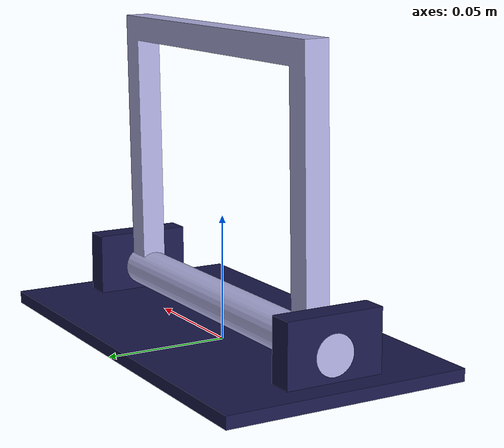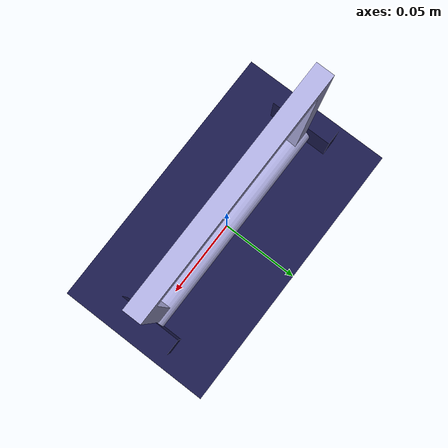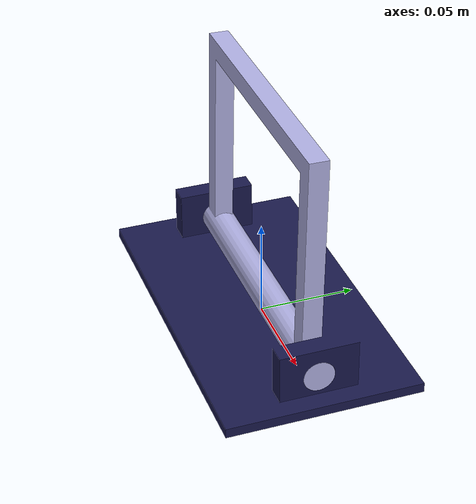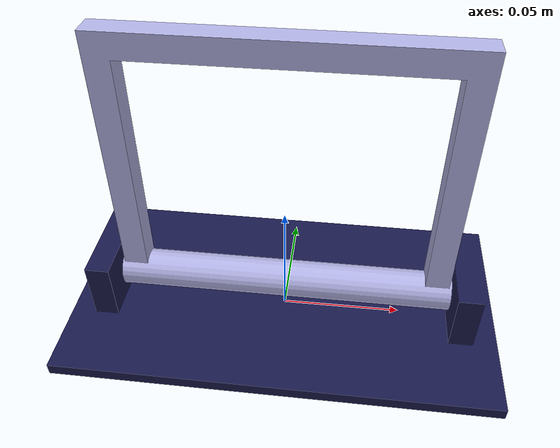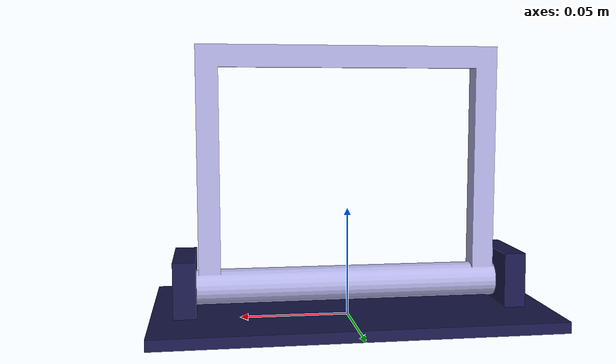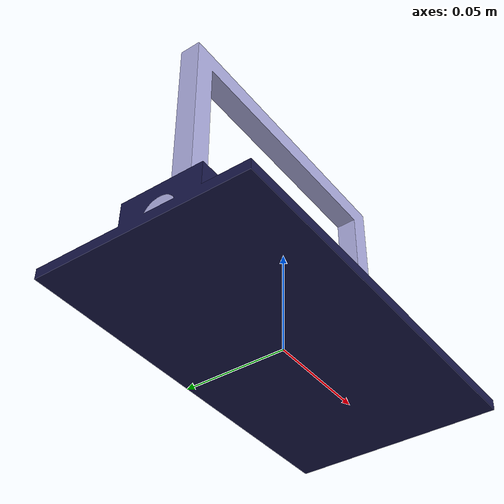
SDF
<?xml version='1.0'?>
<sdf version="1.4">
<model name="lever">

    <link name="base">
      <gravity>0</gravity>
      <pose>0 0 0 0 0 0</pose>
      <inertial>
        <mass>1.5</mass>
        <inertia>
          <ixx>0.0008</ixx>
          <ixy>0.0</ixy>
          <ixz>0.0</ixz>
          <iyy>0.0008</iyy>
          <iyz>0.0</iyz>
          <izz>0.0083</izz>
        </inertia>
      </inertial>

      <collision name="collision">
        <geometry>
            <mesh>
                <uri>model://DREAM_lever/meshes/base.dae</uri>
            </mesh>
        </geometry>
        <surface>
          <friction>
            <ode>
              <mu>100</mu>
              <mu2>100</mu2>
            </ode>
          </friction>
        </surface>
      </collision>

      <visual name="visual">
        <geometry>
            <mesh>
                <uri>model://DREAM_lever/meshes/base.dae</uri>
            </mesh>
        </geometry>
        <material>
          <diffuse>0.1 0.1 0.3 1</diffuse>
          <ambient>0.1 0.1 0.15 1</ambient>
          <specular>0.5 0.5 0.6 1</specular>
          <emissive>0 0 0 0</emissive>
        </material>
        <plugin name="color_plugin" filename="libDREAM_change_color.so"/>
      </visual>
    </link>

    <link name="lever">
      <pose>0 0 0.015 -0.02 0 0</pose>
      <inertial>
        <mass>0.1</mass>
        <pose>0 0 0.035 0 0 0</pose>
        <inertia>
          <ixx>0.0008</ixx>
          <ixy>0.0</ixy>
          <ixz>0.0</ixz>
          <iyy>0.0083</iyy>
          <iyz>0.0</iyz>
          <izz>0.0008</izz>
        </inertia>
      </inertial>

      <collision name="collision">
        <geometry>
            <mesh>
                <uri>model://DREAM_lever/meshes/lever.dae</uri>
            </mesh>
        </geometry>
      </collision>
      <visual name="visual">
        <geometry>
            <mesh>
                <uri>model://DREAM_lever/meshes/lever.dae</uri>
            </mesh>
        </geometry>
        <material>
          <diffuse>0.7 0.7 0.9 1</diffuse>
          <ambient>0.1 0.1 0.2 1</ambient>
          <specular>0.8 0.8 0.95 1</specular>
          <emissive>0 0 0 0</emissive>
        </material>
        <plugin name="color_plugin" filename="libDREAM_change_color.so"/>
      </visual>
    </link>

    <joint name="pivot" type="revolute">
        <pose>0 0 0 0 0 0</pose>
        <child>lever</child>
        <parent>base</parent>
        <axis>
            <xyz>1 0 0</xyz>
            <limit>
                <lower>-0.8</lower>
                <upper>0.8</upper>
            </limit>
        </axis>
    </joint>

    <joint name="world_joint" type="revolute">
        <child>base</child>
        <parent>world</parent>
        <axis>
            <xyz>1 0 0</xyz>
            <limit>
                <lower>0</lower>
                <upper>0</upper>
            </limit>
            <dynamics>
                <damping>0.0</damping>
                <friction>0.0</friction>
            </dynamics>
        </axis>
    </joint>

    <plugin name="sensor" filename="libDREAM_lever_sensor.so"/>

  </model>
</sdf>
